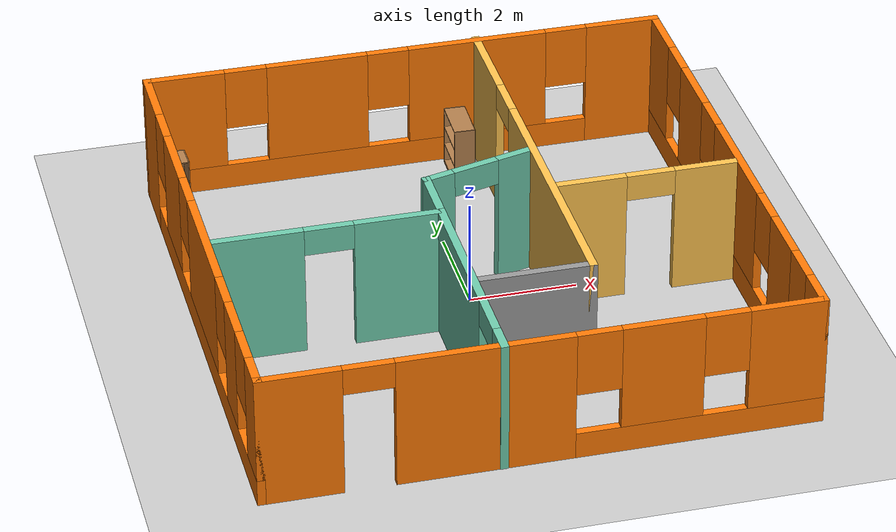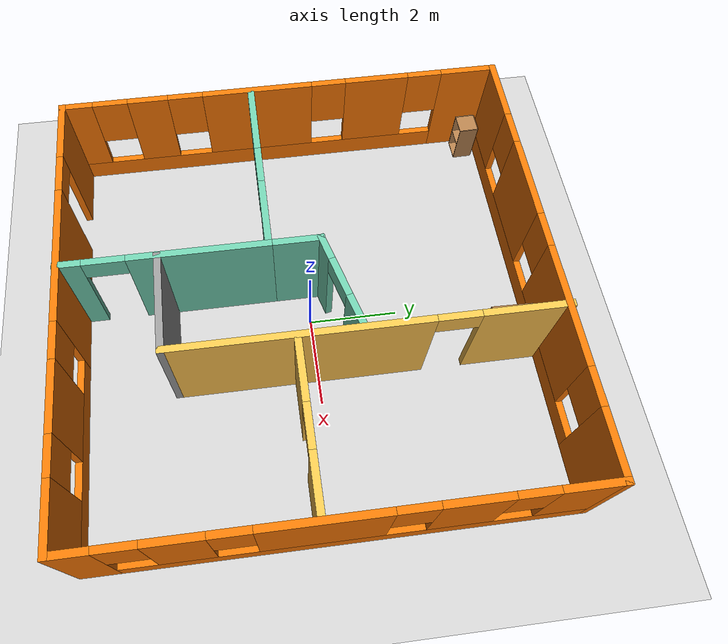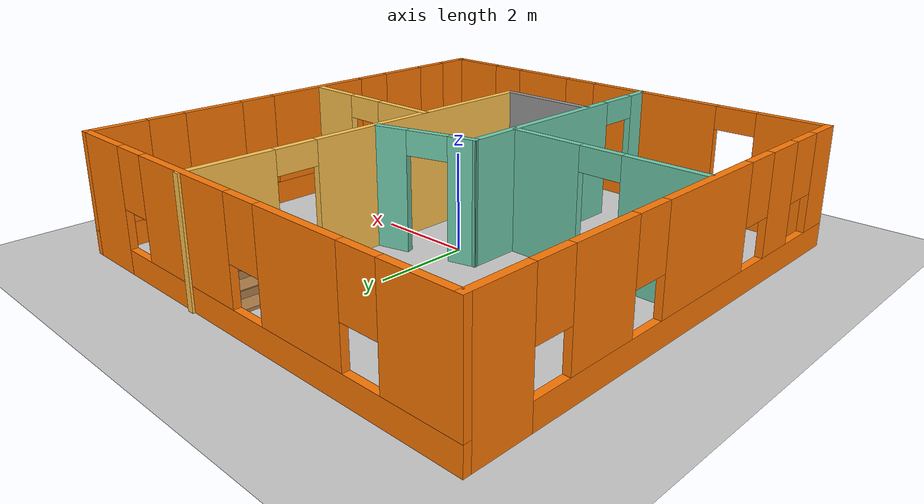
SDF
<sdf version="1.6">
 <world name="default">
  <model name="ground_plane">
   <static>1</static>
   <link name="link">
    <collision name="collision">
     <geometry><plane><normal>0 0 1</normal><size>100 100</size></plane></geometry>
     <surface><friction><ode><mu>100</mu><mu2>50</mu2></ode></friction></surface>
    </collision>
    <visual name="visual">
     <cast_shadows>0</cast_shadows>
     <geometry><plane><normal>0 0 1</normal><size>100 100</size></plane></geometry>
     <material>
      <script><uri>file://media/materials/scripts/gazebo.material</uri><name>Gazebo/Grey</name></script>
     </material>
    </visual>
   </link>
  </model>
  <model name="Untitled">
   <pose>-0.0101 -0.055997 0 0 -0 0</pose>
   <link name="Wall_0">
    <pose>-4.925 -0.01837 0 0 -0 -1.5708</pose>
    <visual name="Wall_0_Visual_0">
     <pose>-4.46509 0 1.25 0 -0 0</pose>
     <geometry><box><size>1.31981 0.15 2.5</size></box></geometry>
     <material>
      <script><uri>file://media/materials/scripts/gazebo.material</uri><name>Gazebo/Grey</name></script>
      <ambient>0.996078 0.47451 0.0196078 1</ambient>
     </material>
     <meta><layer>0</layer></meta>
    </visual>
    <collision name="Wall_0_Collision_0">
     <geometry><box><size>1.31981 0.15 2.5</size></box></geometry>
     <pose>-4.46509 0 1.25 0 -0 0</pose>
    </collision>
    <visual name="Wall_0_Visual_1">
     <pose>0.659906 0 0.25 0 -0 0</pose>
     <geometry><box><size>8.93019 0.15 0.5</size></box></geometry>
     <material>
      <script><uri>file://media/materials/scripts/gazebo.material</uri><name>Gazebo/Grey</name></script>
      <ambient>0.996078 0.47451 0.0196078 1</ambient>
     </material>
     <meta><layer>0</layer></meta>
    </visual>
    <collision name="Wall_0_Collision_1">
     <geometry><box><size>8.93019 0.15 0.5</size></box></geometry>
     <pose>0.659906 0 0.25 0 -0 0</pose>
    </collision>
    <visual name="Wall_0_Visual_2">
     <pose>-2.26138 0 1.5 0 -0 0</pose>
     <geometry><box><size>1.48762 0.15 2</size></box></geometry>
     <material>
      <script><uri>file://media/materials/scripts/gazebo.material</uri><name>Gazebo/Grey</name></script>
      <ambient>0.996078 0.47451 0.0196078 1</ambient>
     </material>
     <meta><layer>0</layer></meta>
    </visual>
    <collision name="Wall_0_Collision_2">
     <geometry><box><size>1.48762 0.15 2</size></box></geometry>
     <pose>-2.26138 0 1.5 0 -0 0</pose>
    </collision>
    <visual name="Wall_0_Visual_3">
     <pose>0.558242 0 1.5 0 -0 0</pose>
     <geometry><box><size>2.55163 0.15 2</size></box></geometry>
     <material>
      <script><uri>file://media/materials/scripts/gazebo.material</uri><name>Gazebo/Grey</name></script>
      <ambient>0.996078 0.47451 0.0196078 1</ambient>
     </material>
     <meta><layer>0</layer></meta>
    </visual>
    <collision name="Wall_0_Collision_3">
     <geometry><box><size>2.55163 0.15 2</size></box></geometry>
     <pose>0.558242 0 1.5 0 -0 0</pose>
    </collision>
    <visual name="Wall_0_Visual_4">
     <pose>3.09856 0 1.5 0 -0 0</pose>
     <geometry><box><size>0.929013 0.15 2</size></box></geometry>
     <material>
      <script><uri>file://media/materials/scripts/gazebo.material</uri><name>Gazebo/Grey</name></script>
      <ambient>0.996078 0.47451 0.0196078 1</ambient>
     </material>
     <meta><layer>0</layer></meta>
    </visual>
    <collision name="Wall_0_Collision_4">
     <geometry><box><size>0.929013 0.15 2</size></box></geometry>
     <pose>3.09856 0 1.5 0 -0 0</pose>
    </collision>
    <visual name="Wall_0_Visual_5">
     <pose>4.74403 0 1.5 0 -0 0</pose>
     <geometry><box><size>0.761933 0.15 2</size></box></geometry>
     <material>
      <script><uri>file://media/materials/scripts/gazebo.material</uri><name>Gazebo/Grey</name></script>
      <ambient>0.996078 0.47451 0.0196078 1</ambient>
     </material>
     <meta><layer>0</layer></meta>
    </visual>
    <collision name="Wall_0_Collision_5">
     <geometry><box><size>0.761933 0.15 2</size></box></geometry>
     <pose>4.74403 0 1.5 0 -0 0</pose>
    </collision>
    <visual name="Wall_0_Visual_6">
     <pose>-3.40519 0 1.9 0 -0 0</pose>
     <geometry><box><size>0.8 0.15 1.2</size></box></geometry>
     <material>
      <script><uri>file://media/materials/scripts/gazebo.material</uri><name>Gazebo/Grey</name></script>
      <ambient>0.996078 0.47451 0.0196078 1</ambient>
     </material>
     <meta><layer>0</layer></meta>
    </visual>
    <collision name="Wall_0_Collision_6">
     <geometry><box><size>0.8 0.15 1.2</size></box></geometry>
     <pose>-3.40519 0 1.9 0 -0 0</pose>
    </collision>
    <visual name="Wall_0_Visual_7">
     <pose>-1.11757 0 1.9 0 -0 0</pose>
     <geometry><box><size>0.8 0.15 1.2</size></box></geometry>
     <material>
      <script><uri>file://media/materials/scripts/gazebo.material</uri><name>Gazebo/Grey</name></script>
      <ambient>0.996078 0.47451 0.0196078 1</ambient>
     </material>
     <meta><layer>0</layer></meta>
    </visual>
    <collision name="Wall_0_Collision_7">
     <geometry><box><size>0.8 0.15 1.2</size></box></geometry>
     <pose>-1.11757 0 1.9 0 -0 0</pose>
    </collision>
    <visual name="Wall_0_Visual_8">
     <pose>2.23405 0 1.9 0 -0 0</pose>
     <geometry><box><size>0.8 0.15 1.2</size></box></geometry>
     <material>
      <script><uri>file://media/materials/scripts/gazebo.material</uri><name>Gazebo/Grey</name></script>
      <ambient>0.996078 0.47451 0.0196078 1</ambient>
     </material>
     <meta><layer>0</layer></meta>
    </visual>
    <collision name="Wall_0_Collision_8">
     <geometry><box><size>0.8 0.15 1.2</size></box></geometry>
     <pose>2.23405 0 1.9 0 -0 0</pose>
    </collision>
    <visual name="Wall_0_Visual_9">
     <pose>3.96307 0 1.9 0 -0 0</pose>
     <geometry><box><size>0.8 0.15 1.2</size></box></geometry>
     <material>
      <script><uri>file://media/materials/scripts/gazebo.material</uri><name>Gazebo/Grey</name></script>
      <ambient>0.996078 0.47451 0.0196078 1</ambient>
     </material>
     <meta><layer>0</layer></meta>
    </visual>
    <collision name="Wall_0_Collision_9">
     <geometry><box><size>0.8 0.15 1.2</size></box></geometry>
     <pose>3.96307 0 1.9 0 -0 0</pose>
    </collision>
   </link>
   <link name="Wall_1">
    <pose>0 -5.06837 0 0 -0 0</pose>
    <visual name="Wall_1_Visual_0">
     <pose>-4.24602 0 1.25 0 -0 0</pose>
     <geometry><box><size>1.50797 0.15 2.5</size></box></geometry>
     <material>
      <script><uri>file://media/materials/scripts/gazebo.material</uri><name>Gazebo/Grey</name></script>
      <ambient>0.996078 0.47451 0.0196078 1</ambient>
     </material>
     <meta><layer>0</layer></meta>
    </visual>
    <collision name="Wall_1_Collision_0">
     <geometry><box><size>1.50797 0.15 2.5</size></box></geometry>
     <pose>-4.24602 0 1.25 0 -0 0</pose>
    </collision>
    <visual name="Wall_1_Visual_1">
     <pose>-1.02202 0 1.25 0 -0 0</pose>
     <geometry><box><size>3.14003 0.15 2.5</size></box></geometry>
     <material>
      <script><uri>file://media/materials/scripts/gazebo.material</uri><name>Gazebo/Grey</name></script>
      <ambient>0.996078 0.47451 0.0196078 1</ambient>
     </material>
     <meta><layer>0</layer></meta>
    </visual>
    <collision name="Wall_1_Collision_1">
     <geometry><box><size>3.14003 0.15 2.5</size></box></geometry>
     <pose>-1.02202 0 1.25 0 -0 0</pose>
    </collision>
    <visual name="Wall_1_Visual_2">
     <pose>2.774 0 0.25 0 -0 0</pose>
     <geometry><box><size>4.452 0.15 0.5</size></box></geometry>
     <material>
      <script><uri>file://media/materials/scripts/gazebo.material</uri><name>Gazebo/Grey</name></script>
      <ambient>0.996078 0.47451 0.0196078 1</ambient>
     </material>
     <meta><layer>0</layer></meta>
    </visual>
    <collision name="Wall_1_Collision_2">
     <geometry><box><size>4.452 0.15 0.5</size></box></geometry>
     <pose>2.774 0 0.25 0 -0 0</pose>
    </collision>
    <visual name="Wall_1_Visual_3">
     <pose>2.07851 0 1.5 0 -0 0</pose>
     <geometry><box><size>1.46102 0.15 2</size></box></geometry>
     <material>
      <script><uri>file://media/materials/scripts/gazebo.material</uri><name>Gazebo/Grey</name></script>
      <ambient>0.996078 0.47451 0.0196078 1</ambient>
     </material>
     <meta><layer>0</layer></meta>
    </visual>
    <collision name="Wall_1_Collision_3">
     <geometry><box><size>1.46102 0.15 2</size></box></geometry>
     <pose>2.07851 0 1.5 0 -0 0</pose>
    </collision>
    <visual name="Wall_1_Visual_4">
     <pose>4.30451 0 1.5 0 -0 0</pose>
     <geometry><box><size>1.39099 0.15 2</size></box></geometry>
     <material>
      <script><uri>file://media/materials/scripts/gazebo.material</uri><name>Gazebo/Grey</name></script>
      <ambient>0.996078 0.47451 0.0196078 1</ambient>
     </material>
     <meta><layer>0</layer></meta>
    </visual>
    <collision name="Wall_1_Collision_4">
     <geometry><box><size>1.39099 0.15 2</size></box></geometry>
     <pose>4.30451 0 1.5 0 -0 0</pose>
    </collision>
    <visual name="Wall_1_Visual_5">
     <pose>0.947997 0 1.9 0 -0 0</pose>
     <geometry><box><size>0.8 0.15 1.2</size></box></geometry>
     <material>
      <script><uri>file://media/materials/scripts/gazebo.material</uri><name>Gazebo/Grey</name></script>
      <ambient>0.996078 0.47451 0.0196078 1</ambient>
     </material>
     <meta><layer>0</layer></meta>
    </visual>
    <collision name="Wall_1_Collision_5">
     <geometry><box><size>0.8 0.15 1.2</size></box></geometry>
     <pose>0.947997 0 1.9 0 -0 0</pose>
    </collision>
    <visual name="Wall_1_Visual_6">
     <pose>3.20901 0 1.9 0 -0 0</pose>
     <geometry><box><size>0.8 0.15 1.2</size></box></geometry>
     <material>
      <script><uri>file://media/materials/scripts/gazebo.material</uri><name>Gazebo/Grey</name></script>
      <ambient>0.996078 0.47451 0.0196078 1</ambient>
     </material>
     <meta><layer>0</layer></meta>
    </visual>
    <collision name="Wall_1_Collision_6">
     <geometry><box><size>0.8 0.15 1.2</size></box></geometry>
     <pose>3.20901 0 1.9 0 -0 0</pose>
    </collision>
    <visual name="Wall_1_Visual_7">
     <pose>-3.04203 0 2.25 0 -0 0</pose>
     <geometry><box><size>0.9 0.15 0.5</size></box></geometry>
     <material>
      <script><uri>file://media/materials/scripts/gazebo.material</uri><name>Gazebo/Grey</name></script>
      <ambient>0.996078 0.47451 0.0196078 1</ambient>
     </material>
     <meta><layer>0</layer></meta>
    </visual>
    <collision name="Wall_1_Collision_7">
     <geometry><box><size>0.9 0.15 0.5</size></box></geometry>
     <pose>-3.04203 0 2.25 0 -0 0</pose>
    </collision>
   </link>
   <link name="Wall_11">
    <pose>3.11224 -0.381007 0 0 -0 0</pose>
    <visual name="Wall_11_Visual_0">
     <pose>-1.03831 0 1.25 0 -0 0</pose>
     <geometry><box><size>1.42338 0.15 2.5</size></box></geometry>
     <material>
      <script><uri>file://media/materials/scripts/gazebo.material</uri><name>Gazebo/Grey</name></script>
      <ambient>1 0.764706 0.305882 1</ambient>
     </material>
     <meta><layer>0</layer></meta>
    </visual>
    <collision name="Wall_11_Collision_0">
     <geometry><box><size>1.42338 0.15 2.5</size></box></geometry>
     <pose>-1.03831 0 1.25 0 -0 0</pose>
    </collision>
    <visual name="Wall_11_Visual_1">
     <pose>1.16169 0 1.25 0 -0 0</pose>
     <geometry><box><size>1.17662 0.15 2.5</size></box></geometry>
     <material>
      <script><uri>file://media/materials/scripts/gazebo.material</uri><name>Gazebo/Grey</name></script>
      <ambient>1 0.764706 0.305882 1</ambient>
     </material>
     <meta><layer>0</layer></meta>
    </visual>
    <collision name="Wall_11_Collision_1">
     <geometry><box><size>1.17662 0.15 2.5</size></box></geometry>
     <pose>1.16169 0 1.25 0 -0 0</pose>
    </collision>
    <visual name="Wall_11_Visual_2">
     <pose>0.123376 0 2.25 0 -0 0</pose>
     <geometry><box><size>0.9 0.15 0.5</size></box></geometry>
     <material>
      <script><uri>file://media/materials/scripts/gazebo.material</uri><name>Gazebo/Grey</name></script>
      <ambient>1 0.764706 0.305882 1</ambient>
     </material>
     <meta><layer>0</layer></meta>
    </visual>
    <collision name="Wall_11_Collision_2">
     <geometry><box><size>0.9 0.15 0.5</size></box></geometry>
     <pose>0.123376 0 2.25 0 -0 0</pose>
    </collision>
   </link>
   <link name="Wall_13">
    <collision name="Wall_13_Collision">
     <geometry><box><size>1.25 0.15 2.5</size></box></geometry>
     <pose>0 0 1.25 0 -0 0</pose>
    </collision>
    <visual name="Wall_13_Visual">
     <pose>0 0 1.25 0 -0 0</pose>
     <geometry><box><size>1.25 0.15 2.5</size></box></geometry>
     <material>
      <script><uri>file://media/materials/scripts/gazebo.material</uri><name>Gazebo/Grey</name></script>
      <ambient>0.435294 0.796078 0.67451 1</ambient>
     </material>
     <meta><layer>0</layer></meta>
    </visual>
    <pose>-0.709347 -0.177891 0 0 -0 1.5708</pose>
   </link>
   <link name="Wall_14">
    <pose>0.304875 0.643869 0 0 -0 0.261799</pose>
    <visual name="Wall_14_Visual_0">
     <pose>-0.816473 0 1.25 0 -0 0</pose>
     <geometry><box><size>0.617054 0.15 2.5</size></box></geometry>
     <material>
      <script><uri>file://media/materials/scripts/gazebo.material</uri><name>Gazebo/Grey</name></script>
      <ambient>0.435294 0.796078 0.67451 1</ambient>
     </material>
     <meta><layer>0</layer></meta>
    </visual>
    <collision name="Wall_14_Collision_0">
     <geometry><box><size>0.617054 0.15 2.5</size></box></geometry>
     <pose>-0.816473 0 1.25 0 -0 0</pose>
    </collision>
    <visual name="Wall_14_Visual_1">
     <pose>0.758527 0 1.25 0 -0 0</pose>
     <geometry><box><size>0.732946 0.15 2.5</size></box></geometry>
     <material>
      <script><uri>file://media/materials/scripts/gazebo.material</uri><name>Gazebo/Grey</name></script>
      <ambient>0.435294 0.796078 0.67451 1</ambient>
     </material>
     <meta><layer>0</layer></meta>
    </visual>
    <collision name="Wall_14_Collision_1">
     <geometry><box><size>0.732946 0.15 2.5</size></box></geometry>
     <pose>0.758527 0 1.25 0 -0 0</pose>
    </collision>
    <visual name="Wall_14_Visual_2">
     <pose>-0.057946 0 2.25 0 -0 0</pose>
     <geometry><box><size>0.9 0.15 0.5</size></box></geometry>
     <material>
      <script><uri>file://media/materials/scripts/gazebo.material</uri><name>Gazebo/Grey</name></script>
      <ambient>0.435294 0.796078 0.67451 1</ambient>
     </material>
     <meta><layer>0</layer></meta>
    </visual>
    <collision name="Wall_14_Collision_2">
     <geometry><box><size>0.9 0.15 0.5</size></box></geometry>
     <pose>-0.057946 0 2.25 0 -0 0</pose>
    </collision>
   </link>
   <link name="Wall_2">
    <pose>4.925 -0.01837 0 0 -0 1.5708</pose>
    <visual name="Wall_2_Visual_0">
     <pose>-4.70413 0 1.25 0 -0 0</pose>
     <geometry><box><size>0.841734 0.15 2.5</size></box></geometry>
     <material>
      <script><uri>file://media/materials/scripts/gazebo.material</uri><name>Gazebo/Grey</name></script>
      <ambient>0.996078 0.47451 0.0196078 1</ambient>
     </material>
     <meta><layer>0</layer></meta>
    </visual>
    <collision name="Wall_2_Collision_0">
     <geometry><box><size>0.841734 0.15 2.5</size></box></geometry>
     <pose>-4.70413 0 1.25 0 -0 0</pose>
    </collision>
    <visual name="Wall_2_Visual_1">
     <pose>0.420867 0 0.25 0 -0 0</pose>
     <geometry><box><size>9.40827 0.15 0.5</size></box></geometry>
     <material>
      <script><uri>file://media/materials/scripts/gazebo.material</uri><name>Gazebo/Grey</name></script>
      <ambient>0.996078 0.47451 0.0196078 1</ambient>
     </material>
     <meta><layer>0</layer></meta>
    </visual>
    <collision name="Wall_2_Collision_1">
     <geometry><box><size>9.40827 0.15 0.5</size></box></geometry>
     <pose>0.420867 0 0.25 0 -0 0</pose>
    </collision>
    <visual name="Wall_2_Visual_2">
     <pose>-2.91236 0 1.5 0 -0 0</pose>
     <geometry><box><size>1.14181 0.15 2</size></box></geometry>
     <material>
      <script><uri>file://media/materials/scripts/gazebo.material</uri><name>Gazebo/Grey</name></script>
      <ambient>0.996078 0.47451 0.0196078 1</ambient>
     </material>
     <meta><layer>0</layer></meta>
    </visual>
    <collision name="Wall_2_Collision_2">
     <geometry><box><size>1.14181 0.15 2</size></box></geometry>
     <pose>-2.91236 0 1.5 0 -0 0</pose>
    </collision>
    <visual name="Wall_2_Visual_3">
     <pose>-0.30554 0 1.5 0 -0 0</pose>
     <geometry><box><size>2.47182 0.15 2</size></box></geometry>
     <material>
      <script><uri>file://media/materials/scripts/gazebo.material</uri><name>Gazebo/Grey</name></script>
      <ambient>0.996078 0.47451 0.0196078 1</ambient>
     </material>
     <meta><layer>0</layer></meta>
    </visual>
    <collision name="Wall_2_Collision_3">
     <geometry><box><size>2.47182 0.15 2</size></box></geometry>
     <pose>-0.30554 0 1.5 0 -0 0</pose>
    </collision>
    <visual name="Wall_2_Visual_4">
     <pose>2.39438 0 1.5 0 -0 0</pose>
     <geometry><box><size>1.32802 0.15 2</size></box></geometry>
     <material>
      <script><uri>file://media/materials/scripts/gazebo.material</uri><name>Gazebo/Grey</name></script>
      <ambient>0.996078 0.47451 0.0196078 1</ambient>
     </material>
     <meta><layer>0</layer></meta>
    </visual>
    <collision name="Wall_2_Collision_4">
     <geometry><box><size>1.32802 0.15 2</size></box></geometry>
     <pose>2.39438 0 1.5 0 -0 0</pose>
    </collision>
    <visual name="Wall_2_Visual_5">
     <pose>4.49169 0 1.5 0 -0 0</pose>
     <geometry><box><size>1.26661 0.15 2</size></box></geometry>
     <material>
      <script><uri>file://media/materials/scripts/gazebo.material</uri><name>Gazebo/Grey</name></script>
      <ambient>0.996078 0.47451 0.0196078 1</ambient>
     </material>
     <meta><layer>0</layer></meta>
    </visual>
    <collision name="Wall_2_Collision_5">
     <geometry><box><size>1.26661 0.15 2</size></box></geometry>
     <pose>4.49169 0 1.5 0 -0 0</pose>
    </collision>
    <visual name="Wall_2_Visual_6">
     <pose>-3.88327 0 1.9 0 -0 0</pose>
     <geometry><box><size>0.8 0.15 1.2</size></box></geometry>
     <material>
      <script><uri>file://media/materials/scripts/gazebo.material</uri><name>Gazebo/Grey</name></script>
      <ambient>0.996078 0.47451 0.0196078 1</ambient>
     </material>
     <meta><layer>0</layer></meta>
    </visual>
    <collision name="Wall_2_Collision_6">
     <geometry><box><size>0.8 0.15 1.2</size></box></geometry>
     <pose>-3.88327 0 1.9 0 -0 0</pose>
    </collision>
    <visual name="Wall_2_Visual_7">
     <pose>-1.94145 0 1.9 0 -0 0</pose>
     <geometry><box><size>0.8 0.15 1.2</size></box></geometry>
     <material>
      <script><uri>file://media/materials/scripts/gazebo.material</uri><name>Gazebo/Grey</name></script>
      <ambient>0.996078 0.47451 0.0196078 1</ambient>
     </material>
     <meta><layer>0</layer></meta>
    </visual>
    <collision name="Wall_2_Collision_7">
     <geometry><box><size>0.8 0.15 1.2</size></box></geometry>
     <pose>-1.94145 0 1.9 0 -0 0</pose>
    </collision>
    <visual name="Wall_2_Visual_8">
     <pose>1.33037 0 1.9 0 -0 0</pose>
     <geometry><box><size>0.8 0.15 1.2</size></box></geometry>
     <material>
      <script><uri>file://media/materials/scripts/gazebo.material</uri><name>Gazebo/Grey</name></script>
      <ambient>0.996078 0.47451 0.0196078 1</ambient>
     </material>
     <meta><layer>0</layer></meta>
    </visual>
    <collision name="Wall_2_Collision_8">
     <geometry><box><size>0.8 0.15 1.2</size></box></geometry>
     <pose>1.33037 0 1.9 0 -0 0</pose>
    </collision>
    <visual name="Wall_2_Visual_9">
     <pose>3.45839 0 1.9 0 -0 0</pose>
     <geometry><box><size>0.8 0.15 1.2</size></box></geometry>
     <material>
      <script><uri>file://media/materials/scripts/gazebo.material</uri><name>Gazebo/Grey</name></script>
      <ambient>0.996078 0.47451 0.0196078 1</ambient>
     </material>
     <meta><layer>0</layer></meta>
    </visual>
    <collision name="Wall_2_Collision_9">
     <geometry><box><size>0.8 0.15 1.2</size></box></geometry>
     <pose>3.45839 0 1.9 0 -0 0</pose>
    </collision>
   </link>
   <link name="Wall_3">
    <pose>0 5.03163 0 0 -0 3.14159</pose>
    <visual name="Wall_3_Visual_0">
     <pose>-4.27791 0 1.25 0 -0 0</pose>
     <geometry><box><size>1.44419 0.15 2.5</size></box></geometry>
     <material>
      <script><uri>file://media/materials/scripts/gazebo.material</uri><name>Gazebo/Grey</name></script>
      <ambient>0.996078 0.47451 0.0196078 1</ambient>
     </material>
     <meta><layer>0</layer></meta>
    </visual>
    <collision name="Wall_3_Collision_0">
     <geometry><box><size>1.44419 0.15 2.5</size></box></geometry>
     <pose>-4.27791 0 1.25 0 -0 0</pose>
    </collision>
    <visual name="Wall_3_Visual_1">
     <pose>0.722093 0 0.25 0 -0 0</pose>
     <geometry><box><size>8.55581 0.15 0.5</size></box></geometry>
     <material>
      <script><uri>file://media/materials/scripts/gazebo.material</uri><name>Gazebo/Grey</name></script>
      <ambient>0.996078 0.47451 0.0196078 1</ambient>
     </material>
     <meta><layer>0</layer></meta>
    </visual>
    <collision name="Wall_3_Collision_1">
     <geometry><box><size>8.55581 0.15 0.5</size></box></geometry>
     <pose>0.722093 0 0.25 0 -0 0</pose>
    </collision>
    <visual name="Wall_3_Visual_2">
     <pose>-1.4135 0 1.5 0 -0 0</pose>
     <geometry><box><size>2.68463 0.15 2</size></box></geometry>
     <material>
      <script><uri>file://media/materials/scripts/gazebo.material</uri><name>Gazebo/Grey</name></script>
      <ambient>0.996078 0.47451 0.0196078 1</ambient>
     </material>
     <meta><layer>0</layer></meta>
    </visual>
    <collision name="Wall_3_Collision_2">
     <geometry><box><size>2.68463 0.15 2</size></box></geometry>
     <pose>-1.4135 0 1.5 0 -0 0</pose>
    </collision>
    <visual name="Wall_3_Visual_3">
     <pose>1.69872 0 1.5 0 -0 0</pose>
     <geometry><box><size>1.93982 0.15 2</size></box></geometry>
     <material>
      <script><uri>file://media/materials/scripts/gazebo.material</uri><name>Gazebo/Grey</name></script>
      <ambient>0.996078 0.47451 0.0196078 1</ambient>
     </material>
     <meta><layer>0</layer></meta>
    </visual>
    <collision name="Wall_3_Collision_3">
     <geometry><box><size>1.93982 0.15 2</size></box></geometry>
     <pose>1.69872 0 1.5 0 -0 0</pose>
    </collision>
    <visual name="Wall_3_Visual_4">
     <pose>4.23432 0 1.5 0 -0 0</pose>
     <geometry><box><size>1.53137 0.15 2</size></box></geometry>
     <material>
      <script><uri>file://media/materials/scripts/gazebo.material</uri><name>Gazebo/Grey</name></script>
      <ambient>0.996078 0.47451 0.0196078 1</ambient>
     </material>
     <meta><layer>0</layer></meta>
    </visual>
    <collision name="Wall_3_Collision_4">
     <geometry><box><size>1.53137 0.15 2</size></box></geometry>
     <pose>4.23432 0 1.5 0 -0 0</pose>
    </collision>
    <visual name="Wall_3_Visual_5">
     <pose>-3.15581 0 1.9 0 -0 0</pose>
     <geometry><box><size>0.8 0.15 1.2</size></box></geometry>
     <material>
      <script><uri>file://media/materials/scripts/gazebo.material</uri><name>Gazebo/Grey</name></script>
      <ambient>0.996078 0.47451 0.0196078 1</ambient>
     </material>
     <meta><layer>0</layer></meta>
    </visual>
    <collision name="Wall_3_Collision_5">
     <geometry><box><size>0.8 0.15 1.2</size></box></geometry>
     <pose>-3.15581 0 1.9 0 -0 0</pose>
    </collision>
    <visual name="Wall_3_Visual_6">
     <pose>0.328812 0 1.9 0 -0 0</pose>
     <geometry><box><size>0.8 0.15 1.2</size></box></geometry>
     <material>
      <script><uri>file://media/materials/scripts/gazebo.material</uri><name>Gazebo/Grey</name></script>
      <ambient>0.996078 0.47451 0.0196078 1</ambient>
     </material>
     <meta><layer>0</layer></meta>
    </visual>
    <collision name="Wall_3_Collision_6">
     <geometry><box><size>0.8 0.15 1.2</size></box></geometry>
     <pose>0.328812 0 1.9 0 -0 0</pose>
    </collision>
    <visual name="Wall_3_Visual_7">
     <pose>3.06863 0 1.9 0 -0 0</pose>
     <geometry><box><size>0.8 0.15 1.2</size></box></geometry>
     <material>
      <script><uri>file://media/materials/scripts/gazebo.material</uri><name>Gazebo/Grey</name></script>
      <ambient>0.996078 0.47451 0.0196078 1</ambient>
     </material>
     <meta><layer>0</layer></meta>
    </visual>
    <collision name="Wall_3_Collision_7">
     <geometry><box><size>0.8 0.15 1.2</size></box></geometry>
     <pose>3.06863 0 1.9 0 -0 0</pose>
    </collision>
   </link>
   <link name="Wall_5">
    <pose>-2.75935 -0.727891 0 0 -0 0</pose>
    <visual name="Wall_5_Visual_0">
     <pose>-1.28254 0 1.25 0 -0 0</pose>
     <geometry><box><size>1.68492 0.15 2.5</size></box></geometry>
     <material>
      <script><uri>file://media/materials/scripts/gazebo.material</uri><name>Gazebo/Grey</name></script>
      <ambient>0.435294 0.796078 0.67451 1</ambient>
     </material>
     <meta><layer>0</layer></meta>
    </visual>
    <collision name="Wall_5_Collision_0">
     <geometry><box><size>1.68492 0.15 2.5</size></box></geometry>
     <pose>-1.28254 0 1.25 0 -0 0</pose>
    </collision>
    <visual name="Wall_5_Visual_1">
     <pose>1.29246 0 1.25 0 -0 0</pose>
     <geometry><box><size>1.66508 0.15 2.5</size></box></geometry>
     <material>
      <script><uri>file://media/materials/scripts/gazebo.material</uri><name>Gazebo/Grey</name></script>
      <ambient>0.435294 0.796078 0.67451 1</ambient>
     </material>
     <meta><layer>0</layer></meta>
    </visual>
    <collision name="Wall_5_Collision_1">
     <geometry><box><size>1.66508 0.15 2.5</size></box></geometry>
     <pose>1.29246 0 1.25 0 -0 0</pose>
    </collision>
    <visual name="Wall_5_Visual_2">
     <pose>0.009916 0 2.25 0 -0 0</pose>
     <geometry><box><size>0.9 0.15 0.5</size></box></geometry>
     <material>
      <script><uri>file://media/materials/scripts/gazebo.material</uri><name>Gazebo/Grey</name></script>
      <ambient>0.435294 0.796078 0.67451 1</ambient>
     </material>
     <meta><layer>0</layer></meta>
    </visual>
    <collision name="Wall_5_Collision_2">
     <geometry><box><size>0.9 0.15 0.5</size></box></geometry>
     <pose>0.009916 0 2.25 0 -0 0</pose>
    </collision>
   </link>
   <link name="Wall_6">
    <pose>-0.709347 -2.90289 0 0 -0 -1.5708</pose>
    <visual name="Wall_6_Visual_0">
     <pose>-0.744227 0 1.25 0 -0 0</pose>
     <geometry><box><size>3.01155 0.15 2.5</size></box></geometry>
     <material>
      <script><uri>file://media/materials/scripts/gazebo.material</uri><name>Gazebo/Grey</name></script>
      <ambient>0.435294 0.796078 0.67451 1</ambient>
     </material>
     <meta><layer>0</layer></meta>
    </visual>
    <collision name="Wall_6_Collision_0">
     <geometry><box><size>3.01155 0.15 2.5</size></box></geometry>
     <pose>-0.744227 0 1.25 0 -0 0</pose>
    </collision>
    <visual name="Wall_6_Visual_1">
     <pose>1.95577 0 1.25 0 -0 0</pose>
     <geometry><box><size>0.588453 0.15 2.5</size></box></geometry>
     <material>
      <script><uri>file://media/materials/scripts/gazebo.material</uri><name>Gazebo/Grey</name></script>
      <ambient>0.435294 0.796078 0.67451 1</ambient>
     </material>
     <meta><layer>0</layer></meta>
    </visual>
    <collision name="Wall_6_Collision_1">
     <geometry><box><size>0.588453 0.15 2.5</size></box></geometry>
     <pose>1.95577 0 1.25 0 -0 0</pose>
    </collision>
    <visual name="Wall_6_Visual_2">
     <pose>1.21155 0 2.25 0 -0 0</pose>
     <geometry><box><size>0.9 0.15 0.5</size></box></geometry>
     <material>
      <script><uri>file://media/materials/scripts/gazebo.material</uri><name>Gazebo/Grey</name></script>
      <ambient>0.435294 0.796078 0.67451 1</ambient>
     </material>
     <meta><layer>0</layer></meta>
    </visual>
    <collision name="Wall_6_Collision_2">
     <geometry><box><size>0.9 0.15 0.5</size></box></geometry>
     <pose>1.21155 0 2.25 0 -0 0</pose>
    </collision>
   </link>
   <link name="Wall_8">
    <pose>1.41279 1.02789 0 0 -0 -1.5708</pose>
    <visual name="Wall_8_Visual_0">
     <pose>-3.18766 0 1.25 0 -0 0</pose>
     <geometry><box><size>1.87468 0.15 2.5</size></box></geometry>
     <material>
      <script><uri>file://media/materials/scripts/gazebo.material</uri><name>Gazebo/Grey</name></script>
      <ambient>1 0.764706 0.305882 1</ambient>
     </material>
     <meta><layer>0</layer></meta>
    </visual>
    <collision name="Wall_8_Collision_0">
     <geometry><box><size>1.87468 0.15 2.5</size></box></geometry>
     <pose>-3.18766 0 1.25 0 -0 0</pose>
    </collision>
    <visual name="Wall_8_Visual_1">
     <pose>1.38734 0 1.25 0 -0 0</pose>
     <geometry><box><size>5.47532 0.15 2.5</size></box></geometry>
     <material>
      <script><uri>file://media/materials/scripts/gazebo.material</uri><name>Gazebo/Grey</name></script>
      <ambient>1 0.764706 0.305882 1</ambient>
     </material>
     <meta><layer>0</layer></meta>
    </visual>
    <collision name="Wall_8_Collision_1">
     <geometry><box><size>5.47532 0.15 2.5</size></box></geometry>
     <pose>1.38734 0 1.25 0 -0 0</pose>
    </collision>
    <visual name="Wall_8_Visual_2">
     <pose>-1.80032 0 2.25 0 -0 0</pose>
     <geometry><box><size>0.9 0.15 0.5</size></box></geometry>
     <material>
      <script><uri>file://media/materials/scripts/gazebo.material</uri><name>Gazebo/Grey</name></script>
      <ambient>1 0.764706 0.305882 1</ambient>
     </material>
     <meta><layer>0</layer></meta>
    </visual>
    <collision name="Wall_8_Collision_2">
     <geometry><box><size>0.9 0.15 0.5</size></box></geometry>
     <pose>-1.80032 0 2.25 0 -0 0</pose>
    </collision>
   </link>
   <link name="Wall_9">
    <collision name="Wall_9_Collision">
     <geometry><box><size>2.25 0.15 2.5</size></box></geometry>
     <pose>0 0 1.25 0 -0 0</pose>
    </collision>
    <visual name="Wall_9_Visual">
     <pose>0 0 1.25 0 -0 0</pose>
     <geometry><box><size>2.25 0.15 2.5</size></box></geometry>
     <material>
      <script><uri>file://media/materials/scripts/gazebo.material</uri><name>Gazebo/Grey</name></script>
      <ambient>1 1 1 1</ambient>
     </material>
     <meta><layer>0</layer></meta>
    </visual>
    <pose>0.362787 -3.02211 0 0 -0 3.14159</pose>
   </link>
   <static>1</static>
  </model>
  <model name="cabinet_0_clone_clone">
   <static>1</static>
   <link name="cabinet_bottom_plate">
    <inertial>
     <pose>0 0 -1 0 -0 0</pose>
     <inertia><ixx>2.05</ixx><ixy>0</ixy><ixz>0</ixz><iyy>2.05</iyy><iyz>0</iyz><izz>2.05</izz></inertia>
     <mass>25</mass>
    </inertial>
    <collision name="cabinet_bottom_plate_geom">
     <pose>0 0 0.01 0 -0 0</pose>
     <geometry><box><size>0.45 0.45 0.02</size></box></geometry>
    </collision>
    <visual name="cabinet_bottom_plate_geom_visual">
     <pose>0 0 0.01 0 -0 0</pose>
     <geometry><box><size>0.45 0.45 0.02</size></box></geometry>
     <material>
      <script><uri>file://media/materials/scripts/gazebo.material</uri><name>Gazebo/Wood</name></script>
     </material>
    </visual>
    <collision name="cabinet_bottom_plate_geom_cabinet_back_plate">
     <pose>0.235 0 0.51 0 -0 0</pose>
     <geometry><box><size>0.02 0.45 1.02</size></box></geometry>
    </collision>
    <visual name="cabinet_bottom_plate_geom_cabinet_back_plate_visual">
     <pose>0.235 0 0.51 0 -0 0</pose>
     <geometry><box><size>0.02 0.45 1.02</size></box></geometry>
     <material>
      <script><uri>file://media/materials/scripts/gazebo.material</uri><name>Gazebo/Wood</name></script>
     </material>
    </visual>
    <collision name="cabinet_bottom_plate_geom_cabinet_left_plate">
     <pose>0 0.235 0.51 0 -0 0</pose>
     <geometry><box><size>0.45 0.02 1.02</size></box></geometry>
    </collision>
    <visual name="cabinet_bottom_plate_geom_cabinet_left_plate_visual">
     <pose>0 0.235 0.51 0 -0 0</pose>
     <geometry><box><size>0.45 0.02 1.02</size></box></geometry>
     <material>
      <script><uri>file://media/materials/scripts/gazebo.material</uri><name>Gazebo/Wood</name></script>
     </material>
    </visual>
    <collision name="cabinet_bottom_plate_geom_cabinet_middle_plate">
     <pose>0 0 0.51 0 -0 0</pose>
     <geometry><box><size>0.45 0.45 0.02</size></box></geometry>
    </collision>
    <visual name="cabinet_bottom_plate_geom_cabinet_middle_plate_visual">
     <pose>0 0 0.51 0 -0 0</pose>
     <geometry><box><size>0.45 0.45 0.02</size></box></geometry>
     <material>
      <script><uri>file://media/materials/scripts/gazebo.material</uri><name>Gazebo/Wood</name></script>
     </material>
    </visual>
    <collision name="cabinet_bottom_plate_geom_cabinet_right_plate">
     <pose>0 -0.235 0.51 0 -0 0</pose>
     <geometry><box><size>0.45 0.02 1.02</size></box></geometry>
    </collision>
    <visual name="cabinet_bottom_plate_geom_cabinet_right_plate_visual">
     <pose>0 -0.235 0.51 0 -0 0</pose>
     <geometry><box><size>0.45 0.02 1.02</size></box></geometry>
     <material>
      <script><uri>file://media/materials/scripts/gazebo.material</uri><name>Gazebo/Wood</name></script>
     </material>
    </visual>
    <collision name="cabinet_bottom_plate_geom_cabinet_top_plate">
     <pose>0 0 1.01 0 -0 0</pose>
     <geometry><box><size>0.45 0.45 0.02</size></box></geometry>
    </collision>
    <visual name="cabinet_bottom_plate_geom_cabinet_top_plate_visual">
     <pose>0 0 1.01 0 -0 0</pose>
     <geometry><box><size>0.45 0.45 0.02</size></box></geometry>
     <material>
      <script><uri>file://media/materials/scripts/gazebo.material</uri><name>Gazebo/Wood</name></script>
     </material>
    </visual>
   </link>
   <pose>-4.56411 4.56278 0 0 -0 1.59775</pose>
  </model>
  <model name="bookshelf_clone">
   <static>1</static>
   <link name="link">
    <inertial><mass>1</mass></inertial>
    <collision name="back">
     <pose>0 0.005 0.6 0 -0 0</pose>
     <geometry><box><size>0.9 0.01 1.2</size></box></geometry>
    </collision>
    <visual name="visual1">
     <pose>0 0.005 0.6 0 -0 0</pose>
     <geometry><box><size>0.9 0.01 1.2</size></box></geometry>
     <material>
      <script><uri>file://media/materials/scripts/gazebo.material</uri><name>Gazebo/Wood</name></script>
     </material>
    </visual>
    <collision name="left_side">
     <pose>0.45 -0.195 0.6 0 -0 0</pose>
     <geometry><box><size>0.02 0.4 1.2</size></box></geometry>
    </collision>
    <visual name="visual2">
     <pose>0.45 -0.195 0.6 0 -0 0</pose>
     <geometry><box><size>0.02 0.4 1.2</size></box></geometry>
     <material>
      <script><uri>file://media/materials/scripts/gazebo.material</uri><name>Gazebo/Wood</name></script>
     </material>
    </visual>
    <collision name="right_side">
     <pose>-0.45 -0.195 0.6 0 -0 0</pose>
     <geometry><box><size>0.02 0.4 1.2</size></box></geometry>
    </collision>
    <visual name="visual3">
     <pose>-0.45 -0.195 0.6 0 -0 0</pose>
     <geometry><box><size>0.02 0.4 1.2</size></box></geometry>
     <material>
      <script><uri>file://media/materials/scripts/gazebo.material</uri><name>Gazebo/Wood</name></script>
     </material>
    </visual>
    <collision name="bottom">
     <pose>0 -0.195 0.03 0 -0 0</pose>
     <geometry><box><size>0.88 0.4 0.06</size></box></geometry>
    </collision>
    <visual name="visual4">
     <pose>0 -0.195 0.03 0 -0 0</pose>
     <geometry><box><size>0.88 0.4 0.06</size></box></geometry>
     <material>
      <script><uri>file://media/materials/scripts/gazebo.material</uri><name>Gazebo/Wood</name></script>
     </material>
    </visual>
    <collision name="top">
     <pose>0 -0.195 1.19 0 -0 0</pose>
     <geometry><box><size>0.88 0.4 0.02</size></box></geometry>
    </collision>
    <visual name="visual5">
     <pose>0 -0.195 1.19 0 -0 0</pose>
     <geometry><box><size>0.88 0.4 0.02</size></box></geometry>
     <material>
      <script><uri>file://media/materials/scripts/gazebo.material</uri><name>Gazebo/Wood</name></script>
     </material>
    </visual>
    <collision name="low_shelf">
     <pose>0 -0.195 0.43 0 -0 0</pose>
     <geometry><box><size>0.88 0.4 0.02</size></box></geometry>
    </collision>
    <visual name="visual6">
     <pose>0 -0.195 0.43 0 -0 0</pose>
     <geometry><box><size>0.88 0.4 0.02</size></box></geometry>
     <material>
      <script><uri>file://media/materials/scripts/gazebo.material</uri><name>Gazebo/Wood</name></script>
     </material>
    </visual>
    <collision name="high_shelf">
     <pose>0 -0.195 0.8 0 -0 0</pose>
     <geometry><box><size>0.88 0.4 0.02</size></box></geometry>
    </collision>
    <visual name="visual7">
     <pose>0 -0.195 0.8 0 -0 0</pose>
     <geometry><box><size>0.88 0.4 0.02</size></box></geometry>
     <material>
      <script><uri>file://media/materials/scripts/gazebo.material</uri><name>Gazebo/Wood</name></script>
     </material>
    </visual>
   </link>
   <pose>1.09289 4.31262 0 0 0 -1.59581</pose>
  </model>
 </world>
</sdf>
